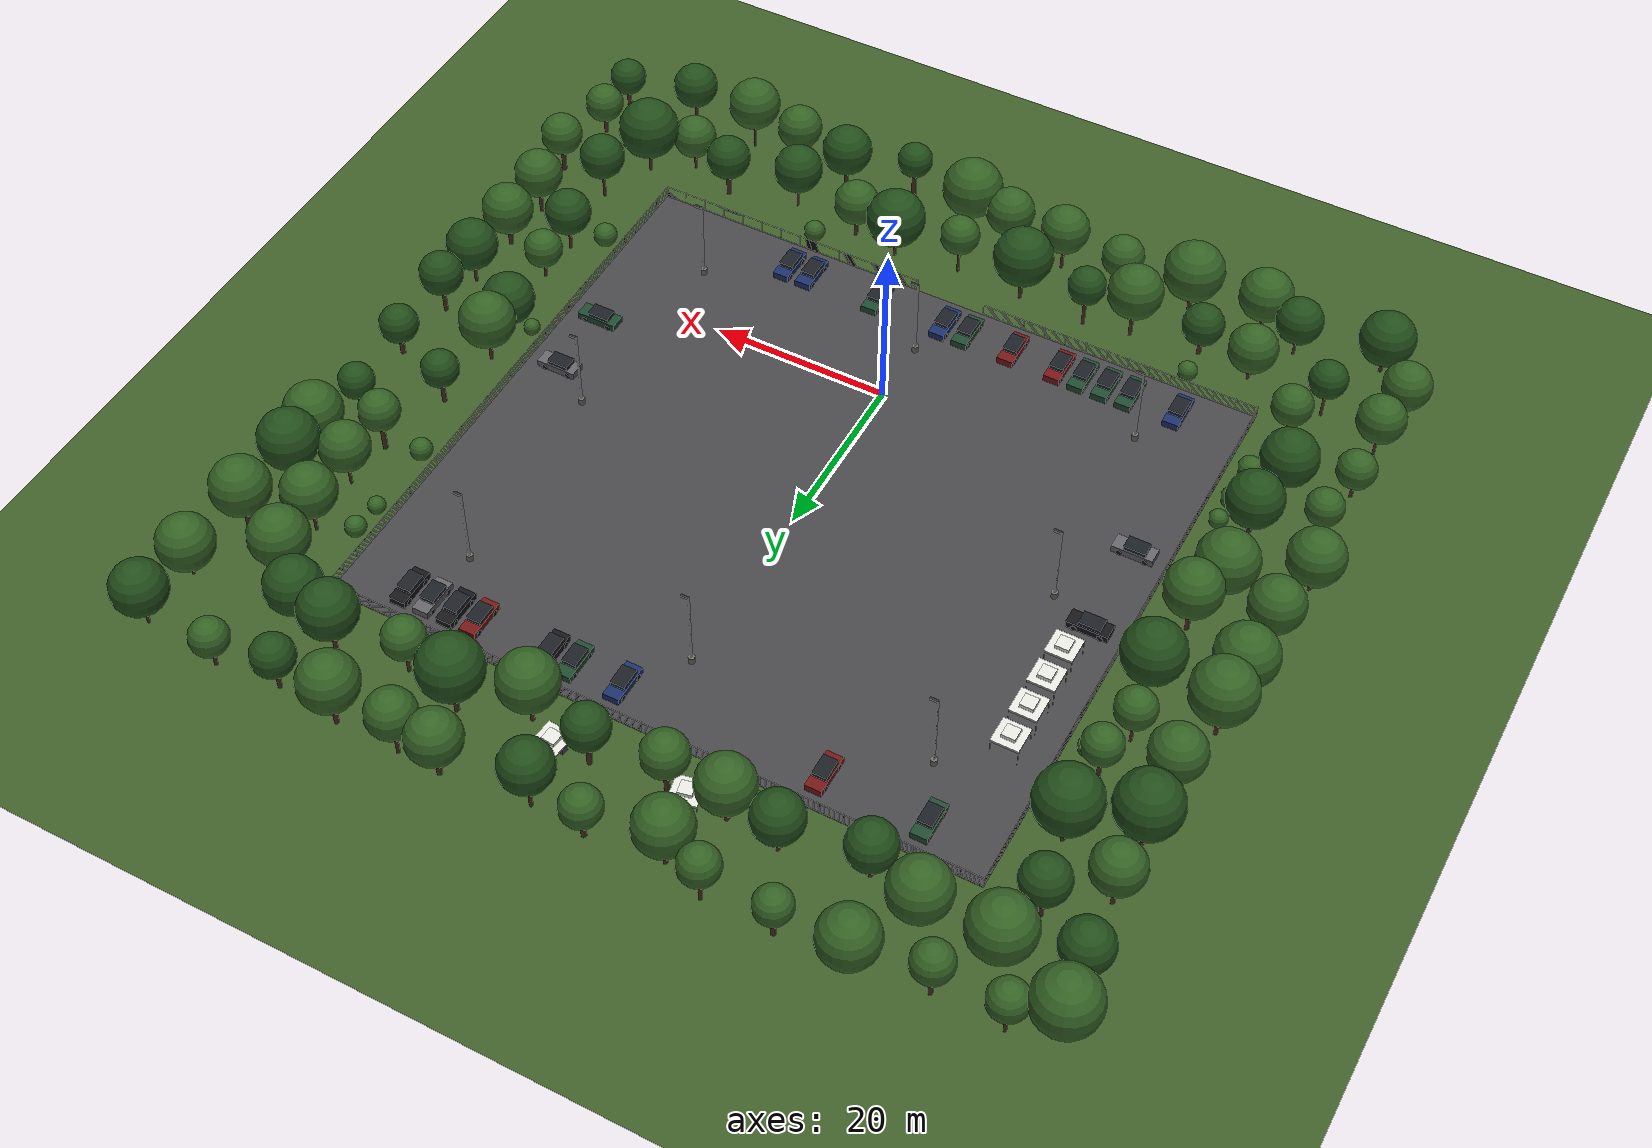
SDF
<sdf version="1.6">
 <world name="orange_igvc_carpark">
  <physics name="1ms" type="ignored">
   <max_step_size>0.001</max_step_size>
   <real_time_factor>1.0</real_time_factor>
  </physics>
  <plugin filename="libignition-gazebo-physics-system.so" name="ignition::gazebo::systems::Physics"/>
  <plugin filename="libignition-gazebo-user-commands-system.so" name="ignition::gazebo::systems::UserCommands"/>
  <plugin filename="libignition-gazebo-scene-broadcaster-system.so" name="ignition::gazebo::systems::SceneBroadcaster"/>
  <plugin filename="libignition-gazebo-sensors-system.so" name="ignition::gazebo::systems::Sensors">
   <render_engine>ogre2</render_engine>
  </plugin>
  <plugin filename="libignition-gazebo-imu-system.so" name="ignition::gazebo::systems::Imu"/>
  <light type="directional" name="sun">
   <pose>0 0 10 0 0 0</pose>
   <diffuse>0.8 0.8 0.8 1</diffuse>
   <specular>0.2 0.2 0.2 1</specular>
   <direction>-0.5 0.1 -0.9</direction>
  </light>
  <include><uri>model://esda_carpark</uri><name>esda_carpark</name></include>
 </world>
</sdf>
